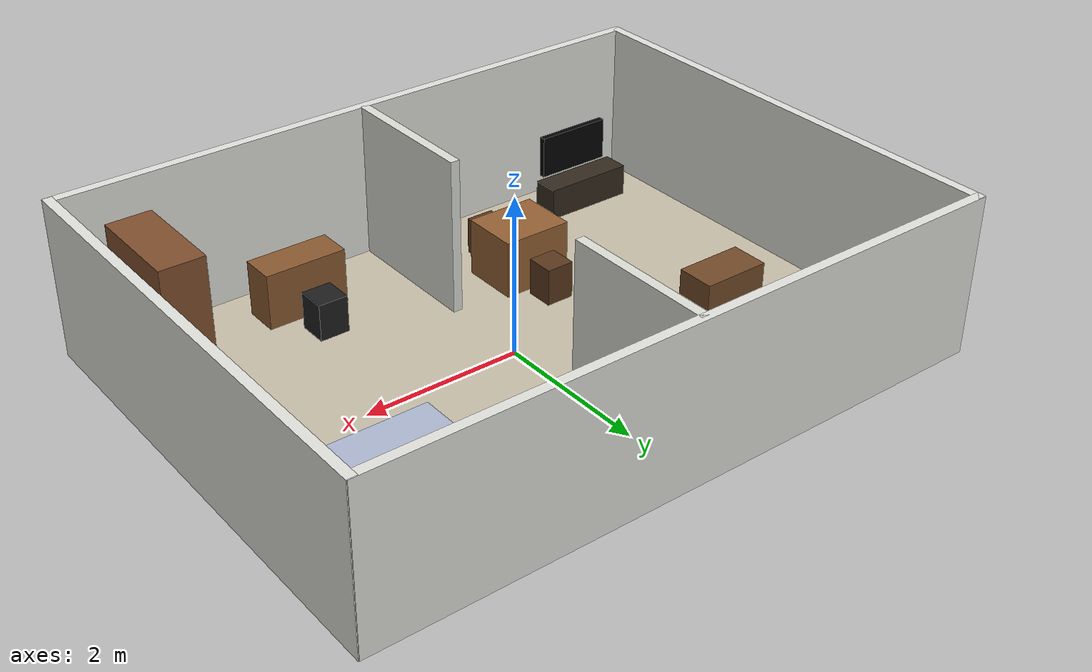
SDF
<?xml version="1.0"?>
<sdf version="1.9">
  <world name="two_room_home">
    <plugin filename="gz-sim-physics-system" name="gz::sim::systems::Physics"/>
    <plugin filename="gz-sim-user-commands-system" name="gz::sim::systems::UserCommands"/>
    <plugin filename="gz-sim-scene-broadcaster-system" name="gz::sim::systems::SceneBroadcaster"/>
    <plugin filename="gz-sim-sensors-system" name="gz::sim::systems::Sensors">
      <render_engine>ogre</render_engine>
    </plugin>
    <plugin filename="gz-sim-imu-system" name="gz::sim::systems::Imu"/>

    <scene>
      <ambient>0.45 0.45 0.45 1</ambient>
      <background>0.78 0.82 0.86 1</background>
      <shadows>true</shadows>
    </scene>

    <gui fullscreen="false">
      <camera name="overview_camera">
        <pose>-5.5 -5.0 5.0 0 0.72 0.78</pose>
        <view_controller>orbit</view_controller>
        <projection_type>perspective</projection_type>
      </camera>
    </gui>

    <gravity>0 0 -9.8</gravity>

    <light name="sun" type="directional">
      <cast_shadows>true</cast_shadows>
      <pose>0 0 8 0 0 0</pose>
      <diffuse>0.8 0.8 0.8 1</diffuse>
      <specular>0.2 0.2 0.2 1</specular>
      <direction>-0.4 0.2 -0.9</direction>
    </light>

    <model name="floor">
      <static>true</static>
      <link name="floor_link">
        <collision name="collision">
          <geometry>
            <box>
              <size>8.0 6.0 0.05</size>
            </box>
          </geometry>
        </collision>
        <visual name="visual">
          <geometry>
            <box>
              <size>8.0 6.0 0.05</size>
            </box>
          </geometry>
          <material>
            <diffuse>0.78 0.74 0.66 1</diffuse>
          </material>
        </visual>
      </link>
    </model>

    <model name="north_wall">
      <static>true</static>
      <pose>0 3 1.0 0 0 0</pose>
      <link name="link">
        <collision name="collision"><geometry><box><size>8.1 0.12 2.0</size></box></geometry></collision>
        <visual name="visual"><geometry><box><size>8.1 0.12 2.0</size></box></geometry><material><diffuse>0.88 0.88 0.86 1</diffuse></material></visual>
      </link>
    </model>
    <model name="south_wall">
      <static>true</static>
      <pose>0 -3 1.0 0 0 0</pose>
      <link name="link">
        <collision name="collision"><geometry><box><size>8.1 0.12 2.0</size></box></geometry></collision>
        <visual name="visual"><geometry><box><size>8.1 0.12 2.0</size></box></geometry><material><diffuse>0.88 0.88 0.86 1</diffuse></material></visual>
      </link>
    </model>
    <model name="west_wall">
      <static>true</static>
      <pose>-4 0 1.0 0 0 0</pose>
      <link name="link">
        <collision name="collision"><geometry><box><size>0.12 6.1 2.0</size></box></geometry></collision>
        <visual name="visual"><geometry><box><size>0.12 6.1 2.0</size></box></geometry><material><diffuse>0.88 0.88 0.86 1</diffuse></material></visual>
      </link>
    </model>
    <model name="east_wall">
      <static>true</static>
      <pose>4 0 1.0 0 0 0</pose>
      <link name="link">
        <collision name="collision"><geometry><box><size>0.12 6.1 2.0</size></box></geometry></collision>
        <visual name="visual"><geometry><box><size>0.12 6.1 2.0</size></box></geometry><material><diffuse>0.88 0.88 0.86 1</diffuse></material></visual>
      </link>
    </model>

    <model name="partition_wall_upper">
      <static>true</static>
      <pose>0 2.05 1.0 0 0 0</pose>
      <link name="link">
        <collision name="collision"><geometry><box><size>0.12 1.9 2.0</size></box></geometry></collision>
        <visual name="visual"><geometry><box><size>0.12 1.9 2.0</size></box></geometry><material><diffuse>0.86 0.87 0.84 1</diffuse></material></visual>
      </link>
    </model>
    <model name="partition_wall_lower">
      <static>true</static>
      <pose>0 -2.05 1.0 0 0 0</pose>
      <link name="link">
        <collision name="collision"><geometry><box><size>0.12 1.9 2.0</size></box></geometry></collision>
        <visual name="visual"><geometry><box><size>0.12 1.9 2.0</size></box></geometry><material><diffuse>0.86 0.87 0.84 1</diffuse></material></visual>
      </link>
    </model>

    <model name="sofa">
      <static>true</static>
      <pose>-2.9 1.6 0.25 0 0 0</pose>
      <link name="link">
        <collision name="collision"><geometry><box><size>1.4 0.55 0.5</size></box></geometry></collision>
        <visual name="visual"><geometry><box><size>1.4 0.55 0.5</size></box></geometry><material><diffuse>0.18 0.36 0.55 1</diffuse></material></visual>
      </link>
    </model>
    <model name="coffee_table">
      <static>true</static>
      <pose>-2.8 0.45 0.18 0 0 0</pose>
      <link name="link">
        <collision name="collision"><geometry><box><size>0.9 0.5 0.36</size></box></geometry></collision>
        <visual name="visual"><geometry><box><size>0.9 0.5 0.36</size></box></geometry><material><diffuse>0.45 0.29 0.16 1</diffuse></material></visual>
      </link>
    </model>
    <model name="tv_stand">
      <static>true</static>
      <pose>-2.9 -2.35 0.22 0 0 0</pose>
      <link name="link">
        <collision name="collision"><geometry><box><size>1.2 0.35 0.44</size></box></geometry></collision>
        <visual name="visual"><geometry><box><size>1.2 0.35 0.44</size></box></geometry><material><diffuse>0.2 0.16 0.12 1</diffuse></material></visual>
      </link>
    </model>
    <model name="television">
      <static>true</static>
      <pose>-2.9 -2.55 0.75 0 0 0</pose>
      <link name="link">
        <collision name="collision"><geometry><box><size>1.0 0.08 0.55</size></box></geometry></collision>
        <visual name="visual"><geometry><box><size>1.0 0.08 0.55</size></box></geometry><material><diffuse>0.01 0.01 0.012 1</diffuse></material></visual>
      </link>
    </model>
    <model name="dining_table">
      <static>true</static>
      <pose>-1.1 -1.35 0.38 0 0 0</pose>
      <link name="link">
        <collision name="collision"><geometry><box><size>0.9 0.75 0.76</size></box></geometry></collision>
        <visual name="visual"><geometry><box><size>0.9 0.75 0.76</size></box></geometry><material><diffuse>0.58 0.38 0.2 1</diffuse></material></visual>
      </link>
    </model>
    <model name="chair_1">
      <static>true</static>
      <pose>-1.1 -0.72 0.25 0 0 0</pose>
      <link name="link">
        <collision name="collision"><geometry><box><size>0.36 0.36 0.5</size></box></geometry></collision>
        <visual name="visual"><geometry><box><size>0.36 0.36 0.5</size></box></geometry><material><diffuse>0.35 0.22 0.12 1</diffuse></material></visual>
      </link>
    </model>
    <model name="chair_2">
      <static>true</static>
      <pose>-1.1 -1.98 0.25 0 0 0</pose>
      <link name="link">
        <collision name="collision"><geometry><box><size>0.36 0.36 0.5</size></box></geometry></collision>
        <visual name="visual"><geometry><box><size>0.36 0.36 0.5</size></box></geometry><material><diffuse>0.35 0.22 0.12 1</diffuse></material></visual>
      </link>
    </model>

    <model name="bed">
      <static>true</static>
      <pose>2.55 1.45 0.28 0 0 0</pose>
      <link name="link">
        <collision name="collision"><geometry><box><size>1.55 1.2 0.56</size></box></geometry></collision>
        <visual name="visual"><geometry><box><size>1.55 1.2 0.56</size></box></geometry><material><diffuse>0.68 0.72 0.82 1</diffuse></material></visual>
      </link>
    </model>
    <model name="wardrobe">
      <static>true</static>
      <pose>3.35 -1.85 0.9 0 0 0</pose>
      <link name="link">
        <collision name="collision"><geometry><box><size>0.55 1.25 1.8</size></box></geometry></collision>
        <visual name="visual"><geometry><box><size>0.55 1.25 1.8</size></box></geometry><material><diffuse>0.5 0.31 0.18 1</diffuse></material></visual>
      </link>
    </model>
    <model name="nightstand">
      <static>true</static>
      <pose>1.55 2.35 0.28 0 0 0</pose>
      <link name="link">
        <collision name="collision"><geometry><box><size>0.45 0.42 0.56</size></box></geometry></collision>
        <visual name="visual"><geometry><box><size>0.45 0.42 0.56</size></box></geometry><material><diffuse>0.48 0.3 0.16 1</diffuse></material></visual>
      </link>
    </model>
    <model name="desk">
      <static>true</static>
      <pose>1.45 -2.3 0.37 0 0 0</pose>
      <link name="link">
        <collision name="collision"><geometry><box><size>1.05 0.45 0.74</size></box></geometry></collision>
        <visual name="visual"><geometry><box><size>1.05 0.45 0.74</size></box></geometry><material><diffuse>0.54 0.35 0.19 1</diffuse></material></visual>
      </link>
    </model>
    <model name="desk_chair">
      <static>true</static>
      <pose>1.45 -1.7 0.25 0 0 0</pose>
      <link name="link">
        <collision name="collision"><geometry><box><size>0.38 0.38 0.5</size></box></geometry></collision>
        <visual name="visual"><geometry><box><size>0.38 0.38 0.5</size></box></geometry><material><diffuse>0.12 0.12 0.12 1</diffuse></material></visual>
      </link>
    </model>
    <model name="lamp">
      <static>true</static>
      <pose>1.2 2.35 0.85 0 0 0</pose>
      <link name="link">
        <collision name="collision"><geometry><cylinder><radius>0.12</radius><length>0.7</length></cylinder></geometry></collision>
        <visual name="visual"><geometry><cylinder><radius>0.12</radius><length>0.7</length></cylinder></geometry><material><diffuse>0.95 0.86 0.45 1</diffuse></material></visual>
      </link>
    </model>
  </world>
</sdf>
